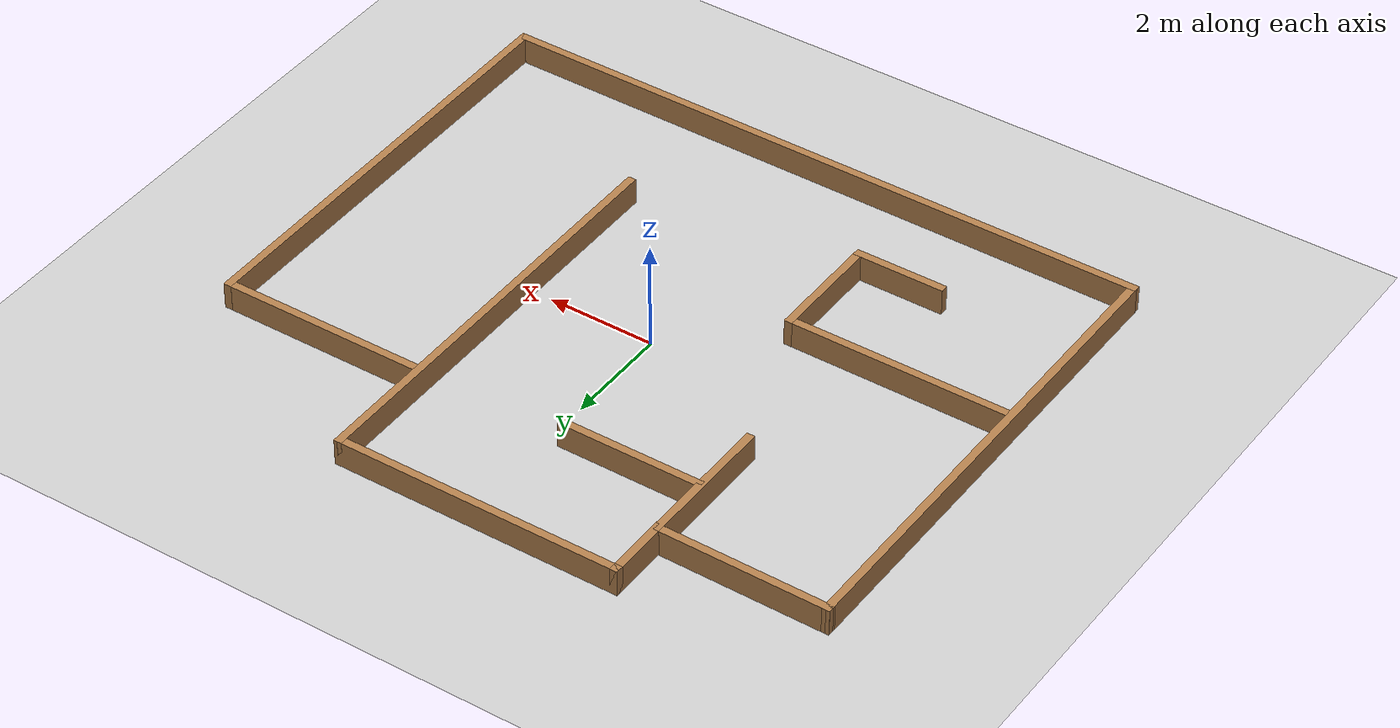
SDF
<sdf version="1.6">
 <world name="default">
  <light name="sun" type="directional">
   <pose>0 0 10 0 -0 0</pose>
   <diffuse>0.8 0.8 0.8 1</diffuse>
   <specular>0.2 0.2 0.2 1</specular>
   <attenuation>
    <range>1000</range>
    <constant>0.9</constant>
    <linear>0.01</linear>
    <quadratic>0.001</quadratic>
   </attenuation>
   <direction>-0.5 0.1 -0.9</direction>
  </light>
  <model name="ground_plane">
   <static>1</static>
   <link name="link">
    <collision name="collision">
     <geometry><plane><normal>0 0 1</normal><size>100 100</size></plane></geometry>
     <surface>
      <contact><collide_bitmask>65535</collide_bitmask></contact>
      <friction><ode><mu>100</mu><mu2>50</mu2></ode></friction>
     </surface>
    </collision>
    <visual name="visual">
     <cast_shadows>0</cast_shadows>
     <geometry><plane><normal>0 0 1</normal><size>100 100</size></plane></geometry>
     <material>
      <script><uri>file://media/materials/scripts/gazebo.material</uri><name>Gazebo/Grey</name></script>
     </material>
    </visual>
   </link>
  </model>
  <gravity>0 0 -9.8</gravity>
  <magnetic_field>6e-06 2.3e-05 -4.2e-05</magnetic_field>
  <atmosphere type="adiabatic"/>
  <physics name="default_physics" default="0" type="ode">
   <max_step_size>0.001</max_step_size>
   <real_time_factor>1</real_time_factor>
   <real_time_update_rate>1000</real_time_update_rate>
  </physics>
  <scene><ambient>0.4 0.4 0.4 1</ambient><background>0.7 0.7 0.7 1</background><shadows>1</shadows></scene>
  <audio><device>default</device></audio>
  <spherical_coordinates>
   <surface_model>EARTH_WGS84</surface_model>
   <latitude_deg>0</latitude_deg>
   <longitude_deg>0</longitude_deg>
   <elevation>0</elevation>
   <heading_deg>0</heading_deg>
  </spherical_coordinates>
  <model name="maze">
   <pose>0.098423 -0.004934 0 0 -0 0</pose>
   <link name="Wall_0">
    <collision name="Wall_0_Collision">
     <geometry><box><size>4.25 0.15 0.5</size></box></geometry>
     <pose>0 0 0.25 0 -0 0</pose>
    </collision>
    <visual name="Wall_0_Visual">
     <pose>0 0 0.25 0 -0 0</pose>
     <geometry><box><size>4.25 0.15 0.5</size></box></geometry>
     <material>
      <script><uri>file://media/materials/scripts/gazebo.material</uri><name>Gazebo/Wood</name></script>
      <ambient>1 1 1 1</ambient>
     </material>
     <meta><layer>0</layer></meta>
    </visual>
    <pose>-4.03236 -1.30491 0 0 -0 0</pose>
   </link>
   <link name="Wall_1">
    <collision name="Wall_1_Collision">
     <geometry><box><size>2.25 0.15 0.5</size></box></geometry>
     <pose>0 0 0.25 0 -0 0</pose>
    </collision>
    <visual name="Wall_1_Visual">
     <pose>0 0 0.25 0 -0 0</pose>
     <geometry><box><size>2.25 0.15 0.5</size></box></geometry>
     <material>
      <script><uri>file://media/materials/scripts/gazebo.material</uri><name>Gazebo/Wood</name></script>
      <ambient>1 1 1 1</ambient>
     </material>
     <meta><layer>0</layer></meta>
    </visual>
    <pose>-1.98236 -2.35491 0 0 -0 -1.5708</pose>
   </link>
   <link name="Wall_10">
    <collision name="Wall_10_Collision">
     <geometry><box><size>1.281 0.15 0.5</size></box></geometry>
     <pose>0 0 0.25 0 -0 0</pose>
    </collision>
    <visual name="Wall_10_Visual">
     <pose>0 0 0.25 0 -0 0</pose>
     <geometry><box><size>1.281 0.15 0.5</size></box></geometry>
     <material>
      <script><uri>file://media/materials/scripts/gazebo.material</uri><name>Gazebo/Wood</name></script>
      <ambient>1 1 1 1</ambient>
     </material>
     <meta><layer>0</layer></meta>
    </visual>
    <pose>-3.03636 4.65959 0 0 -0 1.5708</pose>
   </link>
   <link name="Wall_11">
    <collision name="Wall_11_Collision">
     <geometry><box><size>5.5 0.15 0.5</size></box></geometry>
     <pose>0 0 0.25 0 -0 0</pose>
    </collision>
    <visual name="Wall_11_Visual">
     <pose>0 0 0.25 0 -0 0</pose>
     <geometry><box><size>5.5 0.15 0.5</size></box></geometry>
     <material>
      <script><uri>file://media/materials/scripts/gazebo.material</uri><name>Gazebo/Wood</name></script>
      <ambient>1 1 1 1</ambient>
     </material>
     <meta><layer>0</layer></meta>
    </visual>
    <pose>-0.361363 5.22509 0 0 -0 0</pose>
   </link>
   <link name="Wall_12">
    <collision name="Wall_12_Collision">
     <geometry><box><size>8.25 0.15 0.5</size></box></geometry>
     <pose>0 0 0.25 0 -0 0</pose>
    </collision>
    <visual name="Wall_12_Visual">
     <pose>0 0 0.25 0 -0 0</pose>
     <geometry><box><size>8.25 0.15 0.5</size></box></geometry>
     <material>
      <script><uri>file://media/materials/scripts/gazebo.material</uri><name>Gazebo/Wood</name></script>
      <ambient>1 1 1 1</ambient>
     </material>
     <meta><layer>0</layer></meta>
    </visual>
    <pose>2.31364 1.17509 0 0 -0 -1.5708</pose>
   </link>
   <link name="Wall_14">
    <collision name="Wall_14_Collision">
     <geometry><box><size>12.5971 0.15 0.5</size></box></geometry>
     <pose>0 0 0.25 0 -0 0</pose>
    </collision>
    <visual name="Wall_14_Visual">
     <pose>0 0 0.25 0 -0 0</pose>
     <geometry><box><size>12.5971 0.15 0.5</size></box></geometry>
     <material>
      <script><uri>file://media/materials/scripts/gazebo.material</uri><name>Gazebo/Wood</name></script>
      <ambient>1 1 1 1</ambient>
     </material>
     <meta><layer>0</layer></meta>
    </visual>
    <pose>0.000137 -5.20941 0 0 -0 -0.002491</pose>
   </link>
   <link name="Wall_15">
    <collision name="Wall_15_Collision">
     <geometry><box><size>8.5 0.15 0.5</size></box></geometry>
     <pose>0 0 0.25 0 -0 0</pose>
    </collision>
    <visual name="Wall_15_Visual">
     <pose>0 0 0.25 0 -0 0</pose>
     <geometry><box><size>8.5 0.15 0.5</size></box></geometry>
     <material>
      <script><uri>file://media/materials/scripts/gazebo.material</uri><name>Gazebo/Wood</name></script>
      <ambient>1 1 1 1</ambient>
     </material>
     <meta><layer>0</layer></meta>
    </visual>
    <pose>6.22364 -1.04991 0 0 -0 1.5708</pose>
   </link>
   <link name="Wall_16">
    <collision name="Wall_16_Collision">
     <geometry><box><size>3.96933 0.15 0.5</size></box></geometry>
     <pose>0 0 0.25 0 -0 0</pose>
    </collision>
    <visual name="Wall_16_Visual">
     <pose>0 0 0.25 0 -0 0</pose>
     <geometry><box><size>3.96933 0.15 0.5</size></box></geometry>
     <material>
      <script><uri>file://media/materials/scripts/gazebo.material</uri><name>Gazebo/Wood</name></script>
      <ambient>1 1 1 1</ambient>
     </material>
     <meta><layer>0</layer></meta>
    </visual>
    <pose>4.31414 3.12509 0 0 -0 3.14159</pose>
   </link>
   <link name="Wall_2">
    <collision name="Wall_2_Collision">
     <geometry><box><size>1.75 0.15 0.5</size></box></geometry>
     <pose>0 0 0.25 0 -0 0</pose>
    </collision>
    <visual name="Wall_2_Visual">
     <pose>0 0 0.25 0 -0 0</pose>
     <geometry><box><size>1.75 0.15 0.5</size></box></geometry>
     <material>
      <script><uri>file://media/materials/scripts/gazebo.material</uri><name>Gazebo/Wood</name></script>
      <ambient>1 1 1 1</ambient>
     </material>
     <meta><layer>0</layer></meta>
    </visual>
    <pose>-2.78236 -3.40491 0 0 -0 3.14159</pose>
   </link>
   <link name="Wall_4">
    <collision name="Wall_4_Collision">
     <geometry><box><size>9.469 0.15 0.5</size></box></geometry>
     <pose>0 0 0.25 0 -0 0</pose>
    </collision>
    <visual name="Wall_4_Visual">
     <pose>0 0 0.25 0 -0 0</pose>
     <geometry><box><size>9.469 0.15 0.5</size></box></geometry>
     <material>
      <script><uri>file://media/materials/scripts/gazebo.material</uri><name>Gazebo/Wood</name></script>
      <ambient>1 1 1 1</ambient>
     </material>
     <meta><layer>0</layer></meta>
    </visual>
    <pose>-6.22336 -0.534407 0 0 -0 1.5708</pose>
   </link>
   <link name="Wall_5">
    <collision name="Wall_5_Collision">
     <geometry><box><size>3.33667 0.15 0.5</size></box></geometry>
     <pose>0 0 0.25 0 -0 0</pose>
    </collision>
    <visual name="Wall_5_Visual">
     <pose>0 0 0.25 0 -0 0</pose>
     <geometry><box><size>3.33667 0.15 0.5</size></box></geometry>
     <material>
      <script><uri>file://media/materials/scripts/gazebo.material</uri><name>Gazebo/Wood</name></script>
      <ambient>1 1 1 1</ambient>
     </material>
     <meta><layer>0</layer></meta>
    </visual>
    <pose>-4.62986 4.10959 0 0 -0 -0.009727</pose>
   </link>
   <link name="Wall_6">
    <collision name="Wall_6_Collision">
     <geometry><box><size>2.71894 0.15 0.5</size></box></geometry>
     <pose>0 0 0.25 0 -0 0</pose>
    </collision>
    <visual name="Wall_6_Visual">
     <pose>0 0 0.25 0 -0 0</pose>
     <geometry><box><size>2.71894 0.15 0.5</size></box></geometry>
     <material>
      <script><uri>file://media/materials/scripts/gazebo.material</uri><name>Gazebo/Wood</name></script>
      <ambient>1 1 1 1</ambient>
     </material>
     <meta><layer>0</layer></meta>
    </visual>
    <pose>-3.03636 2.80959 0 0 -0 -1.5708</pose>
   </link>
   <link name="Wall_8">
    <collision name="Wall_8_Collision">
     <geometry><box><size>2.75 0.15 0.5</size></box></geometry>
     <pose>0 0 0.25 0 -0 0</pose>
    </collision>
    <visual name="Wall_8_Visual">
     <pose>0 0 0.25 0 -0 0</pose>
     <geometry><box><size>2.75 0.15 0.5</size></box></geometry>
     <material>
      <script><uri>file://media/materials/scripts/gazebo.material</uri><name>Gazebo/Wood</name></script>
      <ambient>1 1 1 1</ambient>
     </material>
     <meta><layer>0</layer></meta>
    </visual>
    <pose>-1.68036 2.88109 0 0 -0 0</pose>
   </link>
   <static>1</static>
  </model>
 </world>
</sdf>
